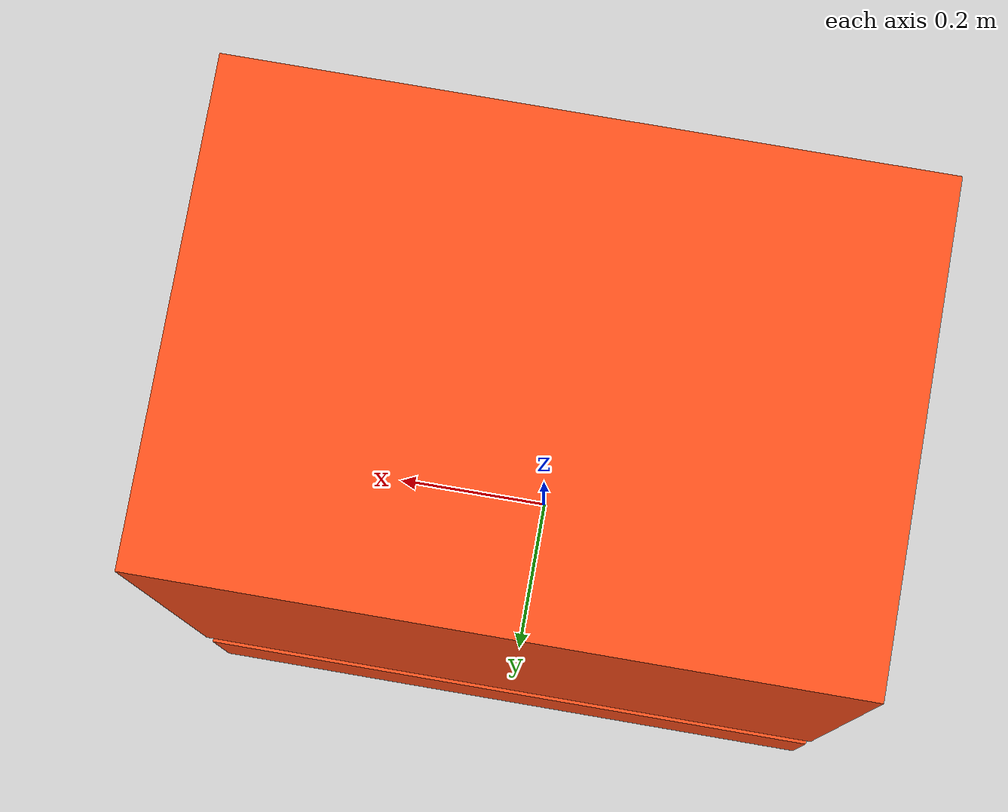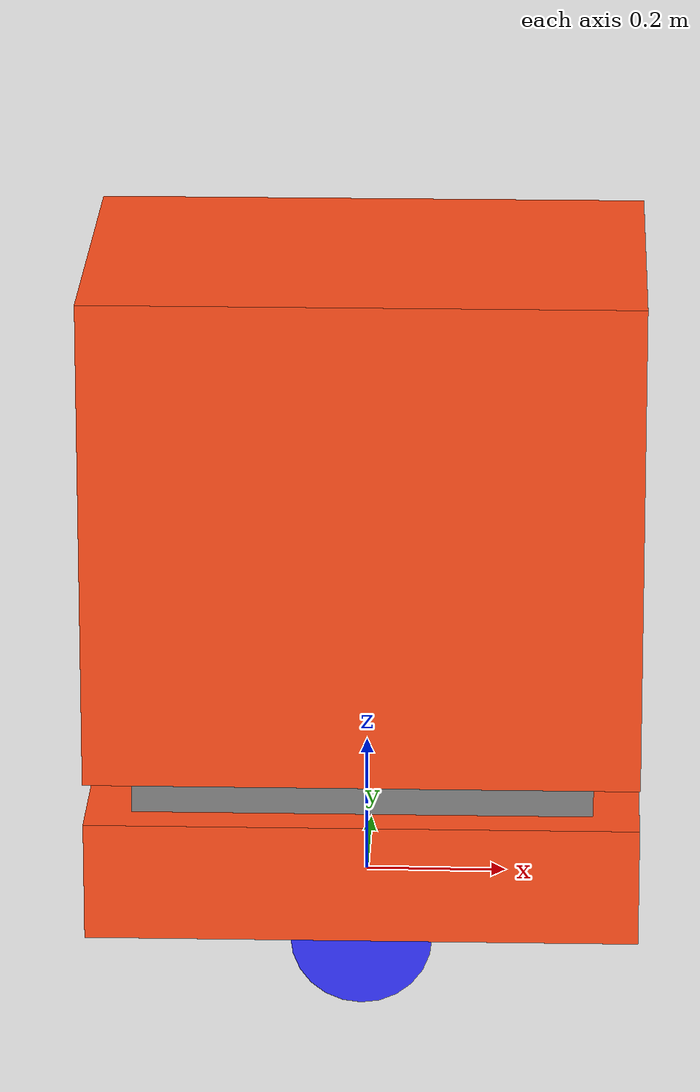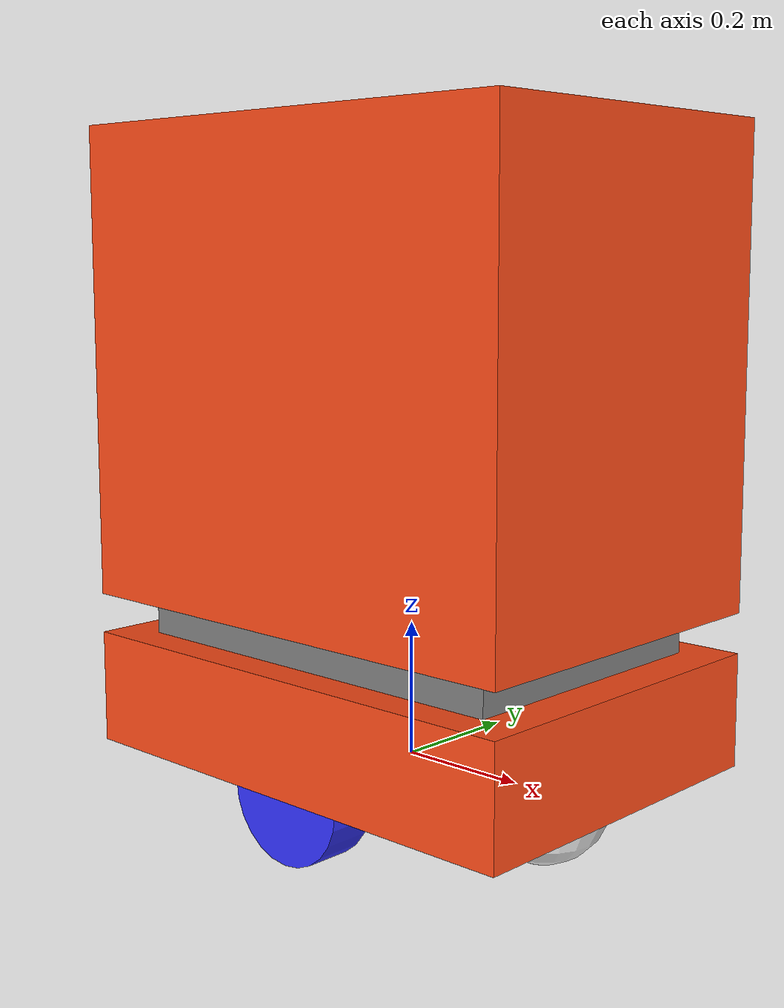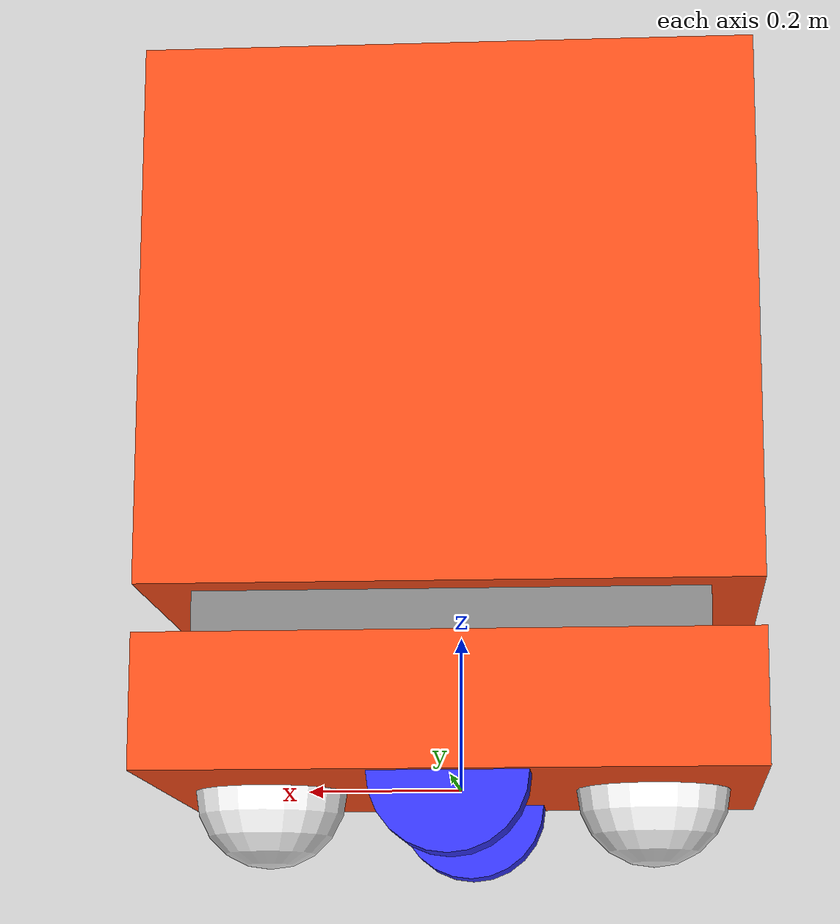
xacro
<?xml version="1.0"?>
<robot xmlns:xacro="http://www.ros.org/wiki/xacro"  name="bot">
    <xacro:include filename="robot_core.xacro" />
    <xacro:include filename="gazebo_control.xacro" />
    <xacro:include filename="lidar_top.xacro" />
    <xacro:include filename="camera.xacro" />
</robot>

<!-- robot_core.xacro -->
<robot xmlns:xacro="http://www.ros.org/wiki/xacro" >

    <xacro:include filename="inertial_macros.xacro"/>
    <xacro:property name="chassis_length" value="0.78"/>
    <xacro:property name="chassis_width" value="0.55"/>
    <xacro:property name="chassis_height" value="0.17"/>
    <xacro:property name="chassis_mass" value="10.0"/>

    <xacro:property name="wheel_radius" value="0.10"/>
    <xacro:property name="wheel_thickness" value="0.07"/>
    <xacro:property name="wheel_mass" value="1"/>
    <xacro:property name="wheel_offset_x" value="0.225"/> <!-- robot_width/2 - 0.05 -->
    <xacro:property name="wheel_offset_y" value="0.225"/>
    <xacro:property name="wheel_offset_z" value="0.01"/>

    <xacro:property name="caster_wheel_radius" value="0.1"/>
    <xacro:property name="caster_wheel_mass" value="2"/>
    <xacro:property name="caster_wheel_offset_x" value="0.25"/>

    <material name="white">
        <color rgba="1 1 1 1" />
    </material>

    <material name="orange">
        <color rgba="1 0.3 0.1 1"/>
    </material>

    <material name="blue">
        <color rgba="0.2 0.2 1 1"/>
    </material>

    <material name="black">
        <color rgba="0 0 0 1"/>
    </material>

    <material name="red">
        <color rgba="1 0 0 1"/>
    </material>

    <material name="grey">
        <color rgba="0.5 0.5 0.5 1"/>
    </material>

    <!-- BASE LINK -->

    <link name="base_link">
    </link>

    <!-- CHASSIS LINK -->

    <joint name="chassis_joint" type="fixed">
        <parent link="base_link"/>
        <child link="chassis"/>
        <origin xyz=" 0 0 0"/>
    </joint>

    <link name="chassis">
            <visual>
                <origin xyz=" 0 0 ${chassis_height/2}"/>
                <geometry>
                    <box size="${chassis_length} ${chassis_width} ${chassis_height}"/>
                </geometry>
                <material name="orange"/>
            </visual>
            <collision>
                <origin xyz=" 0 0 ${chassis_height/2}"/>
                <geometry>
                    <box size="${chassis_length} ${chassis_width} ${chassis_height}"/>
                </geometry>
            </collision>
            <xacro:inertial_box mass="${chassis_mass}" x="${chassis_length}" y="${chassis_width}" z="${chassis_height}">
                <origin xyz="0 0 0" rpy="0 0 0"/>
            </xacro:inertial_box>
    </link>

    <gazebo reference="chassis">
        <material>Gazebo/Orange</material>
    </gazebo>

    <!-- Right Wheel -->
    <joint name="right_wheel_joint" type="continuous">
            <parent link="base_link"/>
            <child link="right_wheel"/>
            <origin xyz="0 ${-wheel_offset_y} 0" rpy="${pi/2} 0 0" />
            <axis xyz="0 0 -1"/>
    </joint>

    <link name="right_wheel">
        <visual>
            <geometry>
                <cylinder radius="${wheel_radius}" length="${wheel_thickness}"/>
            </geometry>
            <material name="blue"/>
        </visual>
        <collision>
            <geometry>
                <cylinder radius="${wheel_radius}" length="${wheel_thickness}"/>
            </geometry>
        </collision>
        <xacro:inertial_cylinder mass="${wheel_mass}" length="${wheel_thickness}" radius="${wheel_radius}">
            <origin xyz="0 0 0" rpy="0 0 0"/>
        </xacro:inertial_cylinder>
    </link>

    <gazebo reference="right_wheel">
        <material>Gazebo/Blue</material>
    </gazebo>

    <!-- Left Wheel -->
    <joint name="left_wheel_joint" type="continuous">
        <parent link="base_link"/>
        <child link="left_wheel"/>
        <origin xyz="0 ${wheel_offset_y} 0" rpy="-${pi/2} 0 0" />
        <axis xyz="0 0 1"/>
    </joint>

    <link name="left_wheel">
        <visual>
            <geometry>
                <cylinder radius="${wheel_radius}" length="${wheel_thickness}"/>
            </geometry>
            <material name="blue"/>
        </visual>
        <collision>
            <geometry>
                <sphere radius="${wheel_radius}"/>
            </geometry>
        </collision>
        <xacro:inertial_cylinder mass="${wheel_mass}" length="${wheel_thickness}" radius="${wheel_radius}">
            <origin xyz="0 0 0" rpy="0 0 0"/>
        </xacro:inertial_cylinder>
    </link>

    <gazebo reference="left_wheel">
        <material>Gazebo/Blue</material>
    </gazebo>

    <!-- Caster wheel front -->
    <joint name="caster_wheel_joint_front" type="fixed">
        <parent link="chassis"/>
        <child link="caster_wheel_front"/>
        <origin xyz="${caster_wheel_offset_x} 0 0"/>
    </joint>

    <link name="caster_wheel_front">
        <visual>
            <geometry>
                <sphere radius="${caster_wheel_radius}"/>
            </geometry>
            <material name="white"/>
        </visual>
        <collision>
            <geometry>
                <sphere radius="${caster_wheel_radius}"/>
            </geometry>
        </collision>
        <xacro:inertial_sphere mass="${caster_wheel_mass}" radius="${caster_wheel_radius}">
            <origin xyz="0 0 0" rpy="0 0 0"/>
        </xacro:inertial_sphere>
    </link>

    <gazebo reference="caster_wheel_front">
        <material>Gazebo/White</material>
        <mu1 value="0.02"/>
        <mu2 value="0.02"/>
    </gazebo>

    <!-- Caster wheel back -->
    <joint name="caster_wheel_joint_back" type="fixed">
        <parent link="chassis"/>
        <child link="caster_wheel_back"/>
        <origin xyz="${-caster_wheel_offset_x} 0 0"/>
    </joint>

    <link name="caster_wheel_back">
        <visual>
            <geometry>
                <sphere radius="${caster_wheel_radius}"/>
            </geometry>
            <material name="white"/>
        </visual>
        <collision>
            <geometry>
                <sphere radius="${caster_wheel_radius}"/>
            </geometry>
        </collision>
        <xacro:inertial_sphere mass="${caster_wheel_mass}" radius="${caster_wheel_radius}">
            <origin xyz="0 0 0" rpy="0 0 0"/>
        </xacro:inertial_sphere>
    </link>

    <gazebo reference="caster_wheel_back">
        <material>Gazebo/White</material>
        <mu1 value="0.02"/>
        <mu2 value="0.02"/>
    </gazebo>

    <!-- Base to Chassis -->
    <joint name="base_to_chassis" type="fixed">
        <parent link="base_link"/>
        <child link="chassis_conect"/>
        <origin xyz="0 0 0.2" rpy="0 0 0"/>
    </joint>

    <link name="chassis_conect">
        <visual>
            <geometry>
                <box size="0.65 0.44 0.06"/>
            </geometry>
            <material name="grey"/>
        </visual>
        <collision>
            <geometry>
                <box size="0.65 0.44 0.06"/>
            </geometry>
        </collision>
        <xacro:inertial_box mass="0.1" x="0.65" y="0.44" z="0.06">
            <origin xyz="0 0 0" rpy="0 0 0"/>
        </xacro:inertial_box>
    </link>

    <gazebo reference="chassis_conect">
        <material>Gazebo/Grey</material>
    </gazebo>

    <!-- Cargo -->
    <joint name="chassis_to_cargo" type="fixed">
        <parent link="chassis_conect"/>
        <child link="cargo"/>
        <origin xyz="0 0 0.38" rpy="0 0 0"/>
    </joint>

    <link name="cargo">
        <visual>
            <geometry>
                <box size="0.78 0.55 0.7"/>
            </geometry>
            <material name="orange"/>
        </visual>
        <collision>
            <geometry>
                <box size="0.78 0.55 0.7"/>
            </geometry>
        </collision>
        <xacro:inertial_box mass="1" x="0.78" y="0.55" z="0.7">
            <origin xyz="0 0 0" rpy="0 0 0"/>
        </xacro:inertial_box>
    </link>

    <!-- Laser Frame -->

</robot>

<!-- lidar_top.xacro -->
<robot xmlns:xacro="http://www.ros.org/wiki/xacro" >

    <joint name="laser_top_joint" type="fixed">
        <parent link="base_link"/>
        <child link="laser_top_frame"/>
        <origin xyz="0 0 0.195" rpy="0 0 0"/>
    </joint>

    <link name="laser_top_frame">
        <visual>
            <geometry>
                <cylinder radius="0.02" length="0.03"/>
            </geometry>
            <material name="red"/>
        </visual>
        <collision>
            <geometry>
                <cylinder radius="0.02" length="0.03"/>
            </geometry>
        </collision>
        <xacro:inertial_cylinder mass="0" length="0.03" radius="0.02">
            <origin xyz="0 0 0" rpy="0 0 0"/>
        </xacro:inertial_cylinder>
    </link>

    <gazebo reference="laser_top_frame">
        <material>Gazebo/Red</material>

        <sensor name="laser_top" type="ray">
            <pose> 0 0 0 0 0 0 </pose>
            <visualize>false</visualize>
            <update_rate>10</update_rate>
            <ray>
                <scan>
                    <horizontal>
                        <samples>720</samples>
                        <resolution>1</resolution>
                        <min_angle>-3.14</min_angle>
                        <max_angle>3.14</max_angle>
                    </horizontal>
                </scan>
                <range>
                    <min>0.1</min>
                    <max>30</max>
                </range>
            </ray>

            <plugin name="laser_top_controller" filename="libgazebo_ros_ray_sensor.so">
                <ros>
                    <argument>~/out:=scan_top</argument>
                </ros>
                <output_type>sensor_msgs/LaserScan</output_type>
                <frame_name>laser_top_frame</frame_name>
            </plugin>
        </sensor>
    </gazebo>

</robot>

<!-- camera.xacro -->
<robot xmlns:xacro="http://www.ros.org/wiki/xacro" >

    <joint name="camera_joint" type="fixed">
        <parent link="chassis"/>
        <child link="camera_frame"/>
        <!-- xyz: đặt camera ở trung tâm trên nóc robot, rpy: pitch=-pi/2 → nhìn thẳng lên trần -->
        <origin xyz="0 0 0.18" rpy="0 -1.5707963 0"/>
    </joint>

    <link name="camera_frame">
        <visual>
            <geometry>
                <box size="0.010 0.03 0.03"/>
            </geometry>
            <material name="black"/>
        </visual>
        <visual>
            <origin xyz="0 0 -0.05"/>
            <geometry>
                <cylinder radius="0.002" length="0.1"/>
            </geometry>
            <material name="black"/>
        </visual>
    </link>

    <joint name="camera_optical_joint" type="fixed">
        <parent link="camera_frame"/>
        <child link="camera_frame_optical"/>
        <origin xyz="0 0 0" rpy="${-pi/2} 0 ${-pi/2}"/>
    </joint>

    <link name="camera_frame_optical"></link>

    <gazebo reference="camera_frame">
        <material>Gazebo/Black</material>

        <sensor name="camera" type="camera">
            <pose> 0 0 0 0 0 0 </pose>
            <visualize>true</visualize>
            <update_rate>10</update_rate>
            <camera>
                <horizontal_fov>1.089</horizontal_fov>
                <image>
                    <format>R8G8B8</format>
                    <width>640</width>
                    <height>480</height>
                </image>
                <clip>
                    <near>0.05</near>
                    <far>8.0</far>
                </clip>
            </camera>
            <plugin name="camera_controller" filename="libgazebo_ros_camera.so">
                <frame_name>camera_frame_optical</frame_name>
            </plugin>
        </sensor>
    </gazebo>

</robot>
